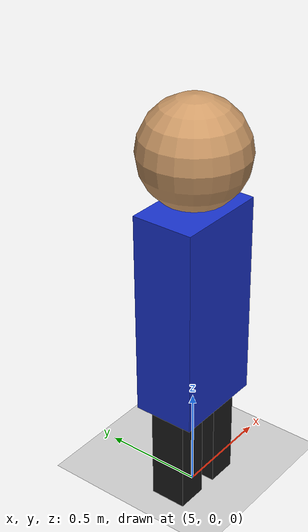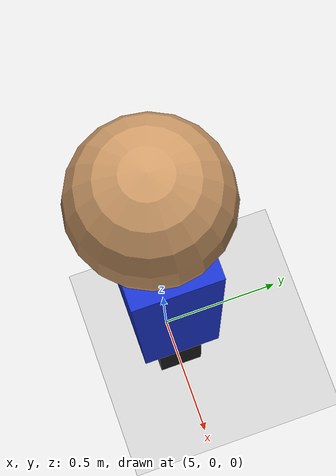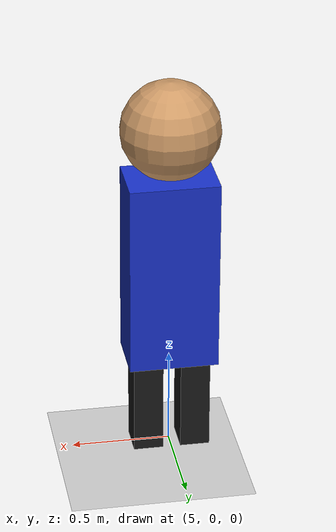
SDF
<?xml version="1.0" encoding="UTF-8"?>
<sdf version="1.9">
  <world name="default">
    <physics type="ode">
      <max_step_size>0.004</max_step_size>
      <real_time_factor>1.0</real_time_factor>
      <real_time_update_rate>250</real_time_update_rate>
    </physics>
    <gravity>0 0 -9.8</gravity>
    <magnetic_field>6e-06 2.3e-05 -4.2e-05</magnetic_field>
    <atmosphere type="adiabatic"/>
    <scene>
      <grid>false</grid>
      <ambient>0.4 0.4 0.4 1</ambient>
      <background>0.7 0.7 0.7 1</background>
      <shadows>true</shadows>
    </scene>
    <model name="ground_plane">
      <static>true</static>
      <link name="link">
        <collision name="collision">
          <geometry>
            <plane>
              <normal>0 0 1</normal>
              <size>1 1</size>
            </plane>
          </geometry>
          <surface>
            <friction>
              <ode/>
            </friction>
            <bounce/>
            <contact/>
          </surface>
        </collision>
        <visual name="visual">
          <geometry>
            <plane>
              <normal>0 0 1</normal>
              <size>500 500</size>
            </plane>
          </geometry>
          <material>
            <ambient>0.8 0.8 0.8 1</ambient>
            <diffuse>0.8 0.8 0.8 1</diffuse>
            <specular>0.8 0.8 0.8 1</specular>
          </material>
        </visual>
        <pose>0 0 0 0 -0 0</pose>
        <inertial>
          <pose>0 0 0 0 -0 0</pose>
          <mass>1</mass>
          <inertia>
            <ixx>1</ixx>
            <ixy>0</ixy>
            <ixz>0</ixz>
            <iyy>1</iyy>
            <iyz>0</iyz>
            <izz>1</izz>
          </inertia>
        </inertial>
        <enable_wind>false</enable_wind>
      </link>
      <pose>0 0 0 0 -0 0</pose>
      <self_collide>false</self_collide>
    </model>
    <light name="sunUTC" type="directional">
      <pose>0 0 500 0 -0 0</pose>
      <cast_shadows>true</cast_shadows>
      <intensity>1</intensity>
      <direction>0.001 0.625 -0.78</direction>
      <diffuse>0.904 0.904 0.904 1</diffuse>
      <specular>0.271 0.271 0.271 1</specular>
      <attenuation>
        <range>2000</range>
        <linear>0</linear>
        <constant>1</constant>
        <quadratic>0</quadratic>
      </attenuation>
      <spot>
        <inner_angle>0</inner_angle>
        <outer_angle>0</outer_angle>
        <falloff>0</falloff>
      </spot>
    </light>
    <spherical_coordinates>
      <surface_model>EARTH_WGS84</surface_model>
      <world_frame_orientation>ENU</world_frame_orientation>
      <latitude_deg>47.397971057728974</latitude_deg>
      <longitude_deg> 8.546163739800146</longitude_deg>
      <elevation>0</elevation>
    </spherical_coordinates>

        <include>
      <uri>model://person</uri>
      <name>rescue_person</name>
      <pose>5 0 0 0 0 0</pose>
    </include>

  </world>
</sdf>

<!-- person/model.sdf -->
<sdf version="1.9">
  <model name="rescue_person">

    <static>true</static>

    <!-- BODY -->
    <link name="body">
      <pose>0 0 1.0 0 0 0</pose>

      <inertial>
        <mass>10</mass>
        <inertia>
          <ixx>1</ixx>
          <iyy>1</iyy>
          <izz>1</izz>
        </inertia>
      </inertial>

      <collision name="body_collision">
        <geometry>
          <box>
            <size>0.45 0.30 1.0</size>
          </box>
        </geometry>
      </collision>

      <visual name="body_visual">
        <geometry>
          <box>
            <size>0.45 0.30 1.0</size>
          </box>
        </geometry>

        <material>
          <ambient>0.1 0.2 0.8 1</ambient>
          <diffuse>0.1 0.2 0.8 1</diffuse>
        </material>
      </visual>
    </link>

    <!-- HEAD -->
    <link name="head">
      <pose>0 0 1.75 0 0 0</pose>

      <inertial>
        <mass>3</mass>
        <inertia>
          <ixx>0.1</ixx>
          <iyy>0.1</iyy>
          <izz>0.1</izz>
        </inertia>
      </inertial>

      <collision name="head_collision">
        <geometry>
          <sphere>
            <radius>0.25</radius>
          </sphere>
        </geometry>
      </collision>

      <visual name="head_visual">
        <geometry>
          <sphere>
            <radius>0.25</radius>
          </sphere>
        </geometry>

        <material>
          <ambient>0.8 0.6 0.4 1</ambient>
          <diffuse>0.8 0.6 0.4 1</diffuse>
        </material>
      </visual>
    </link>

    <!-- LEFT LEG -->
    <link name="left_leg">
      <pose>-0.12 0 0.25 0 0 0</pose>

      <collision name="collision">
        <geometry>
          <box>
            <size>0.15 0.18 0.5</size>
          </box>
        </geometry>
      </collision>

      <visual name="visual">
        <geometry>
          <box>
            <size>0.15 0.18 0.5</size>
          </box>
        </geometry>

        <material>
          <ambient>0.1 0.1 0.1 1</ambient>
          <diffuse>0.1 0.1 0.1 1</diffuse>
        </material>
      </visual>
    </link>

    <!-- RIGHT LEG -->
    <link name="right_leg">
      <pose>0.12 0 0.25 0 0 0</pose>

      <collision name="collision">
        <geometry>
          <box>
            <size>0.15 0.18 0.5</size>
          </box>
        </geometry>
      </collision>

      <visual name="visual">
        <geometry>
          <box>
            <size>0.15 0.18 0.5</size>
          </box>
        </geometry>

        <material>
          <ambient>0.1 0.1 0.1 1</ambient>
          <diffuse>0.1 0.1 0.1 1</diffuse>
        </material>
      </visual>
    </link>

  </model>
</sdf>
